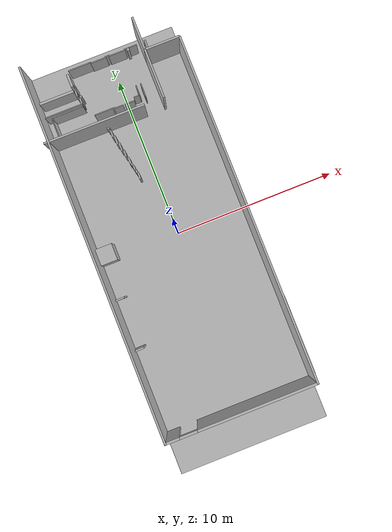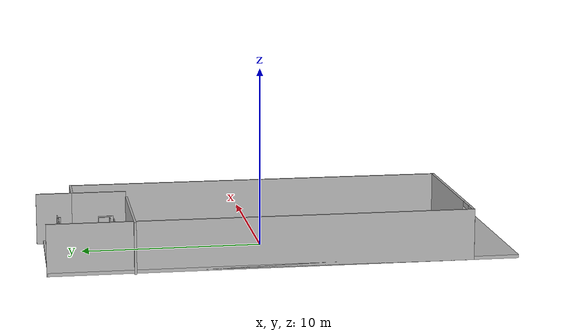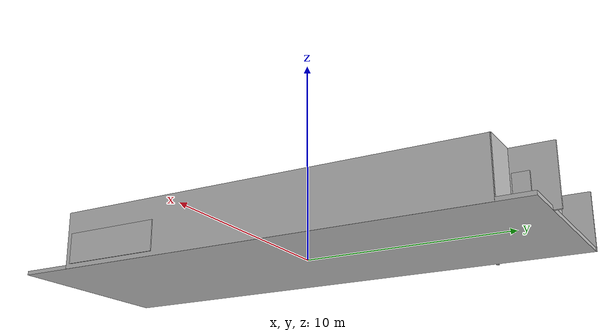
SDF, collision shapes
<?xml version="1.0" ?>
<sdf version="1.5">
  <model name="custom_cafe">
    <static>true</static>
    <link name="link">
      <collision name="main_floor">
        <pose>-0.4 -0.75 0.0948 0 0 0</pose>
        <geometry>
          <box>
            <size>9.38 25.63 0.19</size>
          </box>
        </geometry>
      </collision>

      <collision name="wall_1">
        <pose>-5.03 0.53 1.415 0 0 0</pose>
        <geometry>
          <box>
            <size>.12 23.16 2.83</size>
          </box>
        </geometry>
      </collision>

      <collision name="wall_2">
        <pose>4.24 -.31 1.415 0 0 0</pose>
        <geometry>
          <box>
            <size>.12 21.48 2.83</size>
          </box>
        </geometry>
      </collision>

      <collision name="wall_3">
        <pose>-2.2 7.43 1.415 0 0 0</pose>
        <geometry>
          <box>
            <size>6.2 0.12 2.83</size>
          </box>
        </geometry>
      </collision>

      <collision name="wall_4">
        <pose>2.09 8.9 1.435 0 0 0</pose>
        <geometry>
          <box>
            <size>0.12 3.05 2.87</size>
          </box>
        </geometry>
      </collision>

      <collision name="wall_4_bis">
        <pose>2.09 11.425 1.435 0 0 0</pose>
        <geometry>
          <box>
            <size>0.12 2.0 2.87</size>
          </box>
        </geometry>
      </collision>

      <collision name="wall_5">
        <pose>3.155 10.4 1.435 0 0 0</pose>
        <geometry>
          <box>
            <size>2.13 0.12 2.87</size>
          </box>
        </geometry>
      </collision>

      <collision name="wall_6">
        <pose>0.615 -10.98 1.415 0 0 0</pose>
        <geometry>
          <box>
            <size>7.36 0.15 2.83</size>
          </box>
        </geometry>
      </collision>

      <collision name="wall_7">
        <pose>-4.62 -10.98 1.415 0 0 0</pose>
        <geometry>
          <box>
            <size>0.93 0.15 2.83</size>
          </box>
        </geometry>
      </collision>

      <collision name="wall_8">
        <pose>-3.61 -10.98 2.69 0 0 0</pose>
        <geometry>
          <box>
            <size>1.09 0.15 0.28</size>
          </box>
        </geometry>
      </collision>

      <collision name="coke">
        <pose>-4.385 0.26 .95 0 0 0</pose>
        <geometry>
          <box>
            <size>1.03 1.03 1.52</size>
          </box>
        </geometry>
      </collision>

      <collision name="counter_01">
        <pose>-1.400 6.375 0.9398 0 0 0</pose>
        <geometry>
          <box>
            <size>0.10 0.55 1.5</size>
          </box>
        </geometry>
      </collision>

      <collision name="counter_02">
        <pose>-1.300 5.900 0.9398 0 0 0</pose>
        <geometry>
          <box>
            <size>0.10 0.50 1.5</size>
          </box>
        </geometry>
      </collision>

      <collision name="counter_03">
        <pose>-1.500 6.825 0.9398 0 0 0</pose>
        <geometry>
          <box>
            <size>0.10 0.45 1.5</size>
          </box>
        </geometry>
      </collision>

      <collision name="counter_04">
        <pose>-0.900 3.900 0.9398 0 0 0</pose>
        <geometry>
          <box>
            <size>0.10 0.40 1.5</size>
          </box>
        </geometry>
      </collision>

      <collision name="counter_05">
        <pose>-1.100 4.950 0.9398 0 0 0</pose>
        <geometry>
          <box>
            <size>0.10 0.40 1.5</size>
          </box>
        </geometry>
      </collision>

      <collision name="counter_06">
        <pose>-1.200 5.450 0.9398 0 0 0</pose>
        <geometry>
          <box>
            <size>0.10 0.40 1.5</size>
          </box>
        </geometry>
      </collision>

      <collision name="counter_07">
        <pose>-1.000 4.450 0.9398 0 0 0</pose>
        <geometry>
          <box>
            <size>0.10 0.30 1.5</size>
          </box>
        </geometry>
      </collision>

      <collision name="counter_08">
        <pose>-0.950 4.200 0.9398 0 0 0</pose>
        <geometry>
          <box>
            <size>0.10 0.20 1.5</size>
          </box>
        </geometry>
      </collision>

      <collision name="counter_09">
        <pose>-1.050 4.675 0.9398 0 0 0</pose>
        <geometry>
          <box>
            <size>0.10 0.15 1.5</size>
          </box>
        </geometry>
      </collision>

      <collision name="counter_10">
        <pose>-1.575 7.200 0.9398 0 0 0</pose>
        <geometry>
          <box>
            <size>0.15 0.10 1.5</size>
          </box>
        </geometry>
      </collision>

      <collision name="hall_detail_01">
        <pose>4.425 -8.250 0.9398 0 0 0</pose>
        <geometry>
          <box>
            <size>0.05 4.90 1.5</size>
          </box>
        </geometry>
      </collision>

      <collision name="hall_detail_02">
        <pose>-4.575 -5.600 0.9398 0 0 0</pose>
        <geometry>
          <box>
            <size>0.55 0.10 1.5</size>
          </box>
        </geometry>
      </collision>

      <collision name="hall_detail_03">
        <pose>-4.575 -2.450 0.9398 0 0 0</pose>
        <geometry>
          <box>
            <size>0.55 0.10 1.5</size>
          </box>
        </geometry>
      </collision>

      <collision name="upper_room_01">
        <pose>-3.775 10.025 0.9398 0 0 0</pose>
        <geometry>
          <box>
            <size>2.15 0.15 1.5</size>
          </box>
        </geometry>
      </collision>

      <collision name="upper_room_02">
        <pose>-2.675 10.700 0.9398 0 0 0</pose>
        <geometry>
          <box>
            <size>0.15 0.80 1.5</size>
          </box>
        </geometry>
      </collision>

      <collision name="upper_room_03">
        <pose>-3.675 9.125 0.9398 0 0 0</pose>
        <geometry>
          <box>
            <size>2.35 0.05 1.5</size>
          </box>
        </geometry>
      </collision>

      <collision name="upper_room_04">
        <pose>-3.500 8.975 0.9398 0 0 0</pose>
        <geometry>
          <box>
            <size>2.00 0.05 1.5</size>
          </box>
        </geometry>
      </collision>

      <collision name="upper_room_05">
        <pose>-3.750 7.675 0.9398 0 0 0</pose>
        <geometry>
          <box>
            <size>1.50 0.05 1.5</size>
          </box>
        </geometry>
      </collision>

      <collision name="upper_room_06">
        <pose>2.350 10.975 0.9398 0 0 0</pose>
        <geometry>
          <box>
            <size>0.10 0.75 1.5</size>
          </box>
        </geometry>
      </collision>

      <collision name="upper_room_07">
        <pose>-1.825 11.275 0.9398 0 0 0</pose>
        <geometry>
          <box>
            <size>1.45 0.05 1.5</size>
          </box>
        </geometry>
      </collision>

      <collision name="upper_room_08">
        <pose>-1.400 8.225 0.9398 0 0 0</pose>
        <geometry>
          <box>
            <size>1.30 0.05 1.5</size>
          </box>
        </geometry>
      </collision>

      <collision name="upper_room_09">
        <pose>-4.475 8.325 0.9398 0 0 0</pose>
        <geometry>
          <box>
            <size>0.05 1.25 1.5</size>
          </box>
        </geometry>
      </collision>

      <collision name="upper_room_10">
        <pose>0.525 11.225 0.9398 0 0 0</pose>
        <geometry>
          <box>
            <size>1.05 0.05 1.5</size>
          </box>
        </geometry>
      </collision>

      <collision name="upper_room_11">
        <pose>-0.650 11.225 0.9398 0 0 0</pose>
        <geometry>
          <box>
            <size>1.00 0.05 1.5</size>
          </box>
        </geometry>
      </collision>

      <collision name="upper_room_12">
        <pose>1.175 8.575 0.9398 0 0 0</pose>
        <geometry>
          <box>
            <size>0.05 0.85 1.5</size>
          </box>
        </geometry>
      </collision>

      <collision name="upper_room_13">
        <pose>1.400 11.275 0.9398 0 0 0</pose>
        <geometry>
          <box>
            <size>0.80 0.05 1.5</size>
          </box>
        </geometry>
      </collision>

      <collision name="upper_room_14">
        <pose>-2.500 9.325 0.9398 0 0 0</pose>
        <geometry>
          <box>
            <size>0.10 0.35 1.5</size>
          </box>
        </geometry>
      </collision>

      <collision name="upper_room_15">
        <pose>-2.600 9.825 0.9398 0 0 0</pose>
        <geometry>
          <box>
            <size>0.10 0.35 1.5</size>
          </box>
        </geometry>
      </collision>

      <collision name="upper_room_16">
        <pose>-0.575 8.175 0.9398 0 0 0</pose>
        <geometry>
          <box>
            <size>0.65 0.05 1.5</size>
          </box>
        </geometry>
      </collision>

      <collision name="upper_room_17">
        <pose>0.875 8.675 0.9398 0 0 0</pose>
        <geometry>
          <box>
            <size>0.05 0.65 1.5</size>
          </box>
        </geometry>
      </collision>

      <collision name="upper_room_18">
        <pose>0.150 8.175 0.9398 0 0 0</pose>
        <geometry>
          <box>
            <size>0.60 0.05 1.5</size>
          </box>
        </geometry>
      </collision>

      <collision name="upper_room_19">
        <pose>-0.875 7.875 0.9398 0 0 0</pose>
        <geometry>
          <box>
            <size>0.05 0.55 1.5</size>
          </box>
        </geometry>
      </collision>

      <collision name="upper_room_20">
        <pose>-2.525 10.100 0.9398 0 0 0</pose>
        <geometry>
          <box>
            <size>0.05 0.50 1.5</size>
          </box>
        </geometry>
      </collision>

      <collision name="upper_room_21">
        <pose>1.225 11.175 0.9398 0 0 0</pose>
        <geometry>
          <box>
            <size>0.15 0.15 1.5</size>
          </box>
        </geometry>
      </collision>

      <collision name="upper_room_22">
        <pose>0.675 8.375 0.9398 0 0 0</pose>
        <geometry>
          <box>
            <size>0.35 0.05 1.5</size>
          </box>
        </geometry>
      </collision>

      <collision name="upper_room_23">
        <pose>-2.425 9.550 0.9398 0 0 0</pose>
        <geometry>
          <box>
            <size>0.15 0.10 1.5</size>
          </box>
        </geometry>
      </collision>

      <collision name="upper_room_24">
        <pose>-0.100 11.275 0.9398 0 0 0</pose>
        <geometry>
          <box>
            <size>0.30 0.05 1.5</size>
          </box>
        </geometry>
      </collision>

      <visual name="visual">
        <geometry>
          <mesh>
            <uri>model://custom_cafe/meshes/custom_cafe.dae</uri>
          </mesh>
        </geometry>
      </visual>
    </link>
  </model>
</sdf>
